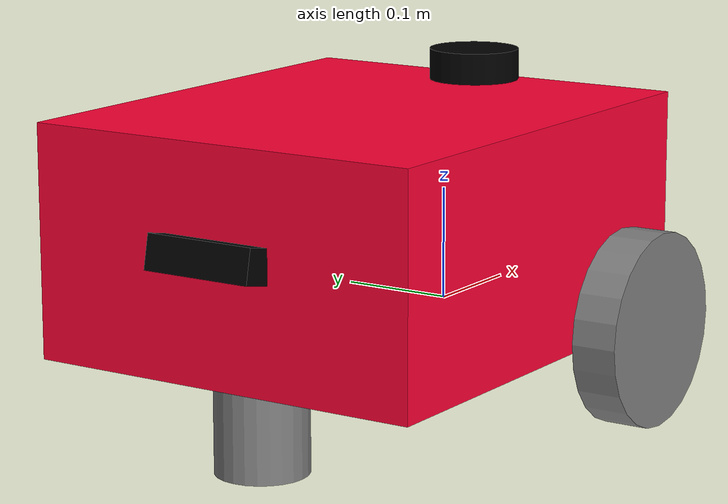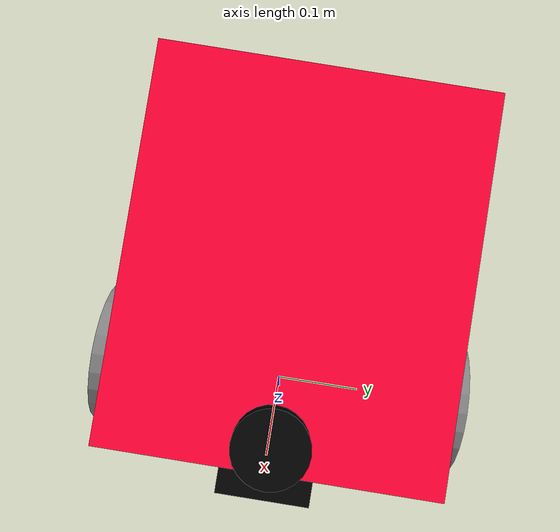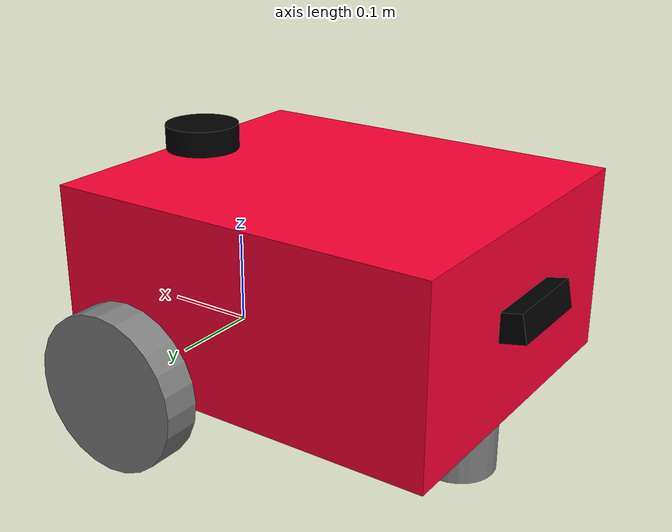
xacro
<?xml version="1.0"?>
<robot xmlns:xacro="http://www.ros.org/wiki/xacro"  name="robot">

    <!-- Example link -->
    <xacro:include filename="robot_core.xacro"/>

    <xacro:include filename="ros2_control.xacro"/>
    <xacro:include filename="lidar.xacro"/>
    <xacro:include filename="camera_front.xacro"/>
    <xacro:include filename="camera_back.xacro"/>

</robot>

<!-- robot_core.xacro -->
<robot xmlns:xacro="http://www.ros.org/wiki/xacro">

    <xacro:include filename="materials.xacro"/>
    <xacro:include filename="inertial_macros.xacro"/>

    <link name="base_link">
        <origin xyz="0 0 0.01"/>
    </link>

     <joint name="base_footprint_joint" type="fixed">
        <parent link="base_link"/>
        <child link="base_footprint"/>
        <origin xyz="-0.14 0 -0.01" rpy="0 0 0"/>
    </joint>

    <link name="base_footprint">
    </link>

    <joint name="chassis_joint" type="fixed">
        <parent link="base_link"/>
        <child link="chassis"/>
        <origin xyz="0 0 0.0023" rpy="0 0 0"/>
    </joint>

    <link name="chassis">
        <visual>
            <origin xyz="-0.13 0 0.09"/>
            <geometry>
                <box size="0.42 0.36 0.2"/>
            </geometry>
            <material name="red"/>
        </visual>
        <xacro:inertial_box mass="4" x="0.5" y="0.4" z="0.3">
            <origin xyz="-0.16 0 0.12" rpy="0 0 0"/>
        </xacro:inertial_box>
    </link>

    <gazebo reference="chassis">
        <material>Gazebo/Red</material>
    </gazebo>

    <joint name="left_wheel_joint" type="continuous">
        <parent link="base_link"/>
        <child link="left_wheel"/>
        <origin xyz="0 0.2 0" rpy="-${pi/2} 0 0"/>
        <axis xyz="0 0 1"/>
    </joint>

    <link name="left_wheel">
        <visual>
            <geometry>
                <cylinder radius="0.085" length="0.04"/>
            </geometry>
            <material name="gray"/>
        </visual>
        <collision>
            <geometry>
                <sphere radius="0.085"/>
            </geometry>
        </collision>
        <xacro:inertial_cylinder mass="3" radius="0.085" length="0.04">
            <origin xyz="0 0 0" rpy="0 0 0"/>
        </xacro:inertial_cylinder>
    </link>

    <gazebo reference="left_wheel">
        <material>Gazebo/Black</material>
    </gazebo>

    <joint name="right_wheel_joint" type="continuous">
        <parent link="base_link"/>
        <child link="right_wheel"/>
        <origin xyz="0 -0.2 0" rpy="${pi/2} 0 0"/>
        <axis xyz="0 0 -1"/>
    </joint>

    <link name="right_wheel">
        <visual>
            <geometry>
                <cylinder radius="0.085" length="0.04"/>
            </geometry>
            <material name="gray"/>
        </visual>
        <collision>
            <geometry>
                <sphere radius="0.085" />
            </geometry>
        </collision>
        <xacro:inertial_cylinder mass="3" radius="0.085" length="0.04">
            <origin xyz="0 0 0" rpy="0 0 0"/>
        </xacro:inertial_cylinder>
    </link>

    <gazebo reference="right_wheel">
        <material>Gazebo/Black</material>
    </gazebo>

    <joint name="caster_wheel_joint" type="fixed">
        <parent link="base_link"/>
        <child link="caster_wheel"/>
        <origin xyz="-0.28 0 -0.045" />
    </joint>

    <link name="caster_wheel">
        <visual>
            <geometry>
                <cylinder radius="0.04" length="0.09"/>
            </geometry>
            <material name="gray"/>
        </visual>
        <collision>
            <geometry>
                <cylinder radius="0.04" length="0.08"/>
            </geometry>
        </collision>
        <xacro:inertial_sphere mass="0.1" radius="0.05">
            <origin xyz="0 0 0" rpy="0 0 0"/>
        </xacro:inertial_sphere>
    </link>

    <gazebo reference="caster_wheel">
        <material>Gazebo/Black</material>
        <mu1 value="0.001"/>
        <mu2 value="0.001"/>
    </gazebo>

</robot>

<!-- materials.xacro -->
<robot xmlns:xacro="http://www.ros.org/wiki/xacro">

<material name="white">
    <color rgba="1 1 1 1"/>
</material>

<material name="red">
    <color rgba="1 0 0.2 1"/>
</material>

<material name="blue">
    <color rgba="0.2 0.2 1 1"/>
</material>

<material name="black">
    <color rgba="0 0 0 1"/>
</material>

<material name="gray">
    <color rgba="0.5 0.5 0.5 1"/>
</material>

</robot>

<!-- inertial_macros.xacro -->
<robot xmlns:xacro="http://www.ros.org/wiki/xacro" >

    <!-- Specify some standard inertial calculations https://en.wikipedia.org/wiki/List_of_moments_of_inertia -->
    <!-- These make use of xacro's mathematical functionality -->

    <xacro:macro name="inertial_sphere" params="mass radius *origin">
        <inertial>
            <xacro:insert_block name="origin"/>
            <mass value="${mass}"/>
            <inertia ixx="${(2/5) * mass * (radius*radius)}" ixy="0.0" ixz="0.0"
                    iyy="${(2/5) * mass * (radius*radius)}" iyz="0.0"
                    izz="${(2/5) * mass * (radius*radius)}"/>
        </inertial>
    </xacro:macro>

    <xacro:macro name="inertial_box" params="mass x y z *origin">
        <inertial>
            <xacro:insert_block name="origin"/>
            <mass value="${mass}"/>
            <inertia ixx="${(1/12) * mass * (y*y+z*z)}" ixy="0.0" ixz="0.0"
                    iyy="${(1/12) * mass * (x*x+z*z)}" iyz="0.0"
                    izz="${(1/12) * mass * (x*x+y*y)}"/>
        </inertial>
    </xacro:macro>

    <xacro:macro name="inertial_cylinder" params="mass length radius *origin">
        <inertial>
            <xacro:insert_block name="origin"/>
            <mass value="${mass}"/>
            <inertia ixx="${(1/12) * mass * (3*radius*radius + length*length)}" ixy="0.0" ixz="0.0"
                    iyy="${(1/12) * mass * (3*radius*radius + length*length)}" iyz="0.0"
                    izz="${(1/2) * mass * (radius*radius)}"/>
        </inertial>
    </xacro:macro>

</robot>

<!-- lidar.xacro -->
<robot xmlns:xacro="http://www.ros.org/wiki/xacro"  name="robot">

    <joint name="laser_joint" type="fixed">
        <parent link="base_link"/>
        <child link="laser_frame"/>
        <origin xyz="0.05 0 0.20"  rpy="0 0 ${pi}"/>

    </joint>

    <link name="laser_frame">
        <visual>
            <geometry>
                <cylinder radius="0.04" length="0.04"/>
            </geometry>
            <material name="black"/>
            <origin xyz="0 0 0" rpy="0 0 0"/>
        </visual>
        <collision>
            <geometry>
                <cylinder radius="0.08" length="0.04"/>
            </geometry>
            <origin xyz="0 0 0" rpy="0 0 0"/>
        </collision>
        <xacro:inertial_cylinder mass="3" radius="0.08" length="0.04">
            <origin xyz="0 0 0" rpy="0 0 0"/>
        </xacro:inertial_cylinder>
    </link>

    <gazebo reference="laser_frame">
        <material>Gazebo/Black</material>

        <sensor name="laser" type="ray">
            <pose> 0 0 0 0 0 0 </pose>
            <visualize>true</visualize>
            <update_rate>10</update_rate>
            <ray>
                <scan>
                    <horizontal>
                        <samples>360</samples>
                        <min_angle>-3.14</min_angle>
                        <max_angle>3.14</max_angle>
                    </horizontal>
                </scan>
                <range>
                    <min>0.15</min>
                    <max>15</max>
                </range>
            </ray>
            <plugin name="laser_controller" filename="libgazebo_ros_ray_sensor.so">
                <ros>
                    <argument>~/out:=scan</argument>
                </ros>
                <output_type>sensor_msgs/LaserScan</output_type>
                <frame_name>laser_frame</frame_name>
            </plugin>
        </sensor>
    </gazebo>

</robot>

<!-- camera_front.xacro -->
<robot xmlns:xacro="http://www.ros.org/wiki/xacro" >

    <joint name="camera_front_joint" type="fixed">
        <parent link="chassis"/>
        <child link="camera_front_link"/>
        <origin xyz="0.10 0 0.14" rpy="0 0 0"/>
    </joint>

    <link name="camera_front_link">
        <visual>
            <geometry>
                <box size="0.03 0.1 0.03"/>
            </geometry>
            <material name="black"/>
        </visual>
    </link>

    <joint name="camera_front_optical_joint" type="fixed">
        <parent link="camera_front_link"/>
        <child link="camera_front_link_optical"/>
        <origin xyz="0 0 0" rpy="${-pi/2} 0 ${-pi/2}"/>
    </joint>

    <link name="camera_front_link_optical"></link>

    <gazebo reference="camera_front_link">
        <material>Gazebo/Black</material>

        <sensor name="camera_front" type="camera">
            <pose> 0 0 0 0 0 0 </pose>
            <visualize>true</visualize>
            <update_rate>30</update_rate>
            <camera>
                <horizontal_fov>1.361</horizontal_fov>
                <image>
                    <format>R8G8B8</format>
                    <width>1920</width>
                    <height>1080</height>
                </image>
                <clip>
                    <near>0.05</near>
                    <far>8.0</far>
                </clip>
            </camera>
            <plugin name="camera_controller" filename="libgazebo_ros_camera.so">
                <frame_name>camera_link_optical</frame_name>
            </plugin>
        </sensor>
    </gazebo>

</robot>

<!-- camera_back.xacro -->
<robot xmlns:xacro="http://www.ros.org/wiki/xacro" >

    <joint name="camera_back_joint" type="fixed">
        <parent link="chassis"/>
        <child link="camera_back_link"/>
        <origin xyz="-0.35 0 0.1" rpy="0 0.2 0"/>
    </joint>

    <link name="camera_back_link">
        <visual>
            <geometry>
                <box size="0.03 0.1 0.03"/>
            </geometry>
            <material name="black"/>
        </visual>
    </link>

    <joint name="camera_back_optical_joint" type="fixed">
        <parent link="camera_back_link"/>
        <child link="camera_back_link_optical"/>
        <origin xyz="0 0 0" rpy="${-pi/2} 0 ${-pi/2}"/>
    </joint>

    <link name="camera_back_link_optical"></link>

    <gazebo reference="camera_back_link">
        <material>Gazebo/Black</material>

        <sensor name="camera_back" type="camera">
            <pose> 0 0 0 0 0 0 </pose>
            <visualize>true</visualize>
            <update_rate>30</update_rate>
            <camera>
                <horizontal_fov>1.361</horizontal_fov>
                <image>
                    <format>R8G8B8</format>
                    <width>1920</width>
                    <height>1080</height>
                </image>
                <clip>
                    <near>0.05</near>
                    <far>8.0</far>
                </clip>
            </camera>
            <plugin name="camera_controller" filename="libgazebo_ros_camera.so">
                <frame_name>camera_link_optical</frame_name>
            </plugin>
        </sensor>
    </gazebo>

</robot>
